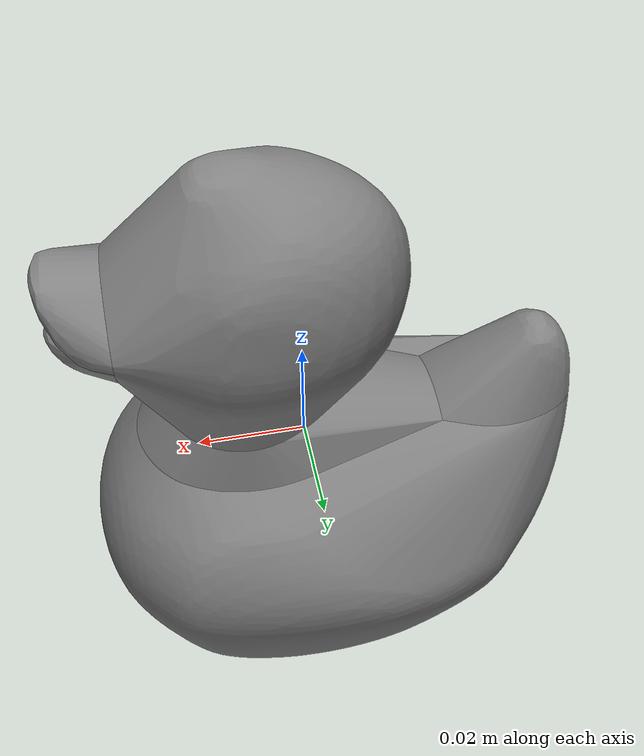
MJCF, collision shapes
<mujoco model="rubber_duck">
  <compiler meshdir="."/>

  <asset>
    <mesh name="rubber_duck" file="rubber_duck.stl"/>
    <mesh name="rubber_duck_collision_hull_000" file="rubber_duck_collision_hull_000.stl"/>
    <mesh name="rubber_duck_collision_hull_001" file="rubber_duck_collision_hull_001.stl"/>
    <mesh name="rubber_duck_collision_hull_002" file="rubber_duck_collision_hull_002.stl"/>
    <mesh name="rubber_duck_collision_hull_003" file="rubber_duck_collision_hull_003.stl"/>
    <mesh name="rubber_duck_collision_hull_004" file="rubber_duck_collision_hull_004.stl"/>
    <mesh name="rubber_duck_collision_hull_005" file="rubber_duck_collision_hull_005.stl"/>
  </asset>

  <worldbody>
    <body name="object">
      <freejoint name="object_joint"/>
      <geom name="object_visual" type="mesh" mesh="rubber_duck"
            contype="0" conaffinity="0" group="2" rgba="0.9 0.9 0.8 1" mass="0"/>
      <geom name="rubber_duck_collision_hull_000_collision" type="mesh" mesh="rubber_duck_collision_hull_000"
            mass="0.0083" condim="6" friction="1.0 0.002 0.002" priority="1"/>
      <geom name="rubber_duck_collision_hull_001_collision" type="mesh" mesh="rubber_duck_collision_hull_001"
            mass="0.0083" condim="6" friction="1.0 0.002 0.002" priority="1"/>
      <geom name="rubber_duck_collision_hull_002_collision" type="mesh" mesh="rubber_duck_collision_hull_002"
            mass="0.0083" condim="6" friction="1.0 0.002 0.002" priority="1"/>
      <geom name="rubber_duck_collision_hull_003_collision" type="mesh" mesh="rubber_duck_collision_hull_003"
            mass="0.0083" condim="6" friction="1.0 0.002 0.002" priority="1"/>
      <geom name="rubber_duck_collision_hull_004_collision" type="mesh" mesh="rubber_duck_collision_hull_004"
            mass="0.0083" condim="6" friction="1.0 0.002 0.002" priority="1"/>
      <geom name="rubber_duck_collision_hull_005_collision" type="mesh" mesh="rubber_duck_collision_hull_005"
            mass="0.0083" condim="6" friction="1.0 0.002 0.002" priority="1"/>
    </body>
  </worldbody>
</mujoco>
